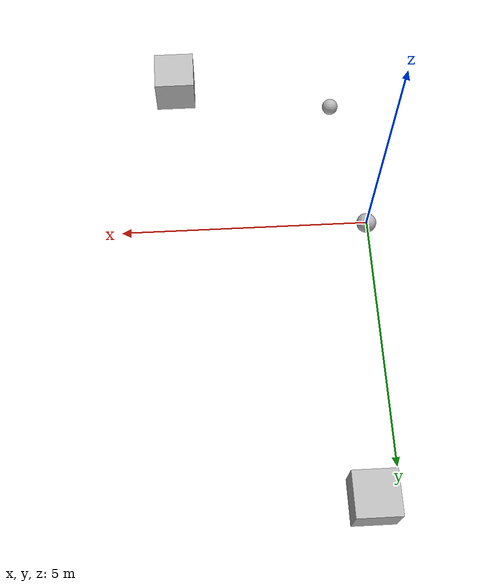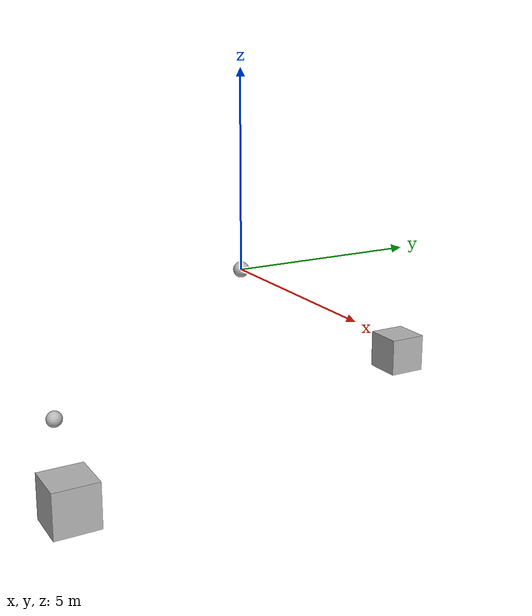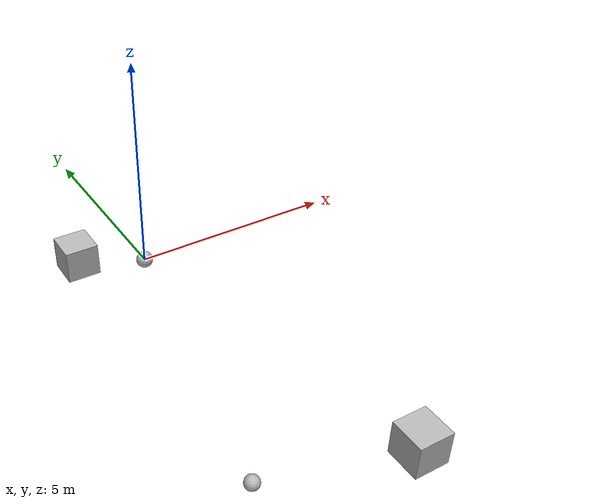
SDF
<?xml version="1.0" ?>
<!--
  Ignition Gazebo buoyancy plugin demo. This world demonstrates a graded
  buoyancy world consisting of some basic shapes which should eventually float
  up.
-->
<sdf version="1.6">
  <world name="buoyancy">

    <physics name="1ms" type="ode">
      <max_step_size>0.001</max_step_size>
      <real_time_factor>0</real_time_factor>
    </physics>
    <plugin
      filename="ignition-gazebo-physics-system"
      name="ignition::gazebo::systems::Physics">
    </plugin>
    <plugin
      filename="ignition-gazebo-user-commands-system"
      name="ignition::gazebo::systems::UserCommands">
    </plugin>
    <plugin
      filename="ignition-gazebo-scene-broadcaster-system"
      name="ignition::gazebo::systems::SceneBroadcaster">
    </plugin>
    <plugin
      filename="ignition-gazebo-buoyancy-system"
      name="ignition::gazebo::systems::Buoyancy">
      <graded_buoyancy>
        <default_density>1000</default_density>
        <density_change>
          <above_depth>0</above_depth>
          <density>1</density>
        </density_change>
      </graded_buoyancy>

      <!-- enable by link name -->
      <enable>lighter_than_water::ball::body</enable>

      <!-- enable by top level model name -->
      <enable>balloon_lighter_than_air</enable>

      <!-- enable by nested model name -->
      <enable>neutral_buoyancy::box</enable>
    </plugin>

    <light type="directional" name="sun">
      <cast_shadows>true</cast_shadows>
      <pose>0 0 10 0 0 0</pose>
      <diffuse>1 1 1 1</diffuse>
      <specular>0.5 0.5 0.5 1</specular>
      <attenuation>
        <range>1000</range>
        <constant>0.9</constant>
        <linear>0.01</linear>
        <quadratic>0.001</quadratic>
      </attenuation>
      <direction>-0.5 0.1 -0.9</direction>
    </light>

    <model name='lighter_than_water'>
      <pose>0 0 0 0 0 0</pose>
      <!-- This sphere should bob up and down. -->
      <model name="ball">
        <link name='body'>
          <pose>0 0 0 0 0 0</pose>
          <inertial>
            <mass>25</mass>
            <inertia>
              <ixx>86.28907821859966</ixx>
              <ixy>0</ixy>
              <ixz>0</ixz>
              <iyy>86.28907821859966</iyy>
              <iyz>0</iyz>
              <izz>5.026548245743671</izz>
            </inertia>
          </inertial>

          <visual name='body_visual'>
            <geometry>
              <sphere>
                <radius>0.2</radius>
              </sphere>
            </geometry>
          </visual>
          <collision name='body_collision'>
            <geometry>
              <sphere>
                <radius>0.2</radius>
              </sphere>
            </geometry>
          </collision>
        </link>
      </model>
    </model>

    <!-- This balloon should shoot up -->
    <model name='balloon_lighter_than_air'>
      <pose>0 -5 -3 0 0 0</pose>
      <link name='body'>
        <pose>0 0 0 0 0 0</pose>
        <inertial>
          <mass>0.1</mass>
          <inertia>
            <ixx>86.28907821859966</ixx>
            <ixy>0</ixy>
            <ixz>0</ixz>
            <iyy>86.28907821859966</iyy>
            <iyz>0</iyz>
            <izz>5.026548245743671</izz>
          </inertia>
        </inertial>

        <visual name='body_visual'>
          <geometry>
            <sphere>
              <radius>0.2</radius>
            </sphere>
          </geometry>
        </visual>
        <collision name='body_collision'>
          <geometry>
            <sphere>
              <radius>0.2</radius>
            </sphere>
          </geometry>
        </collision>
      </link>
    </model>

    <!-- This box is neutrally buoyant and therefore should stay still -->
    <model name='neutral_buoyancy'>
      <pose>0 5 -3 0 0 0</pose>
      <model name='box'>
          <pose>0 0 0 0 0 0</pose>
        <link name='body'>
          <inertial>
            <mass>1000</mass>
            <pose>0 0 0.1 0 0 0</pose>
            <inertia>
              <ixx>86.28907821859966</ixx>
              <ixy>0</ixy>
              <ixz>0</ixz>
              <iyy>86.28907821859966</iyy>
              <iyz>0</iyz>
              <izz>5.026548245743671</izz>
            </inertia>
          </inertial>

          <visual name='body_visual'>
            <geometry>
              <box>
                <size>1 1 1</size>
              </box>
            </geometry>
          </visual>
          <collision name='body_collision'>
            <geometry>
               <box>
                <size>1 1 1</size>
              </box>
            </geometry>
          </collision>
        </link>
      </model>
    </model>

    <!-- Not affected by buoyancy -->
    <model name='box_no_buoyancy'>
      <pose>4 -6 -3 0 0 0</pose>
      <link name='body'>
        <inertial>
          <mass>1000</mass>
          <pose>0 0 0.1 0 0 0</pose>
          <inertia>
            <ixx>86.28907821859966</ixx>
            <ixy>0</ixy>
            <ixz>0</ixz>
            <iyy>86.28907821859966</iyy>
            <iyz>0</iyz>
            <izz>5.026548245743671</izz>
          </inertia>
        </inertial>

        <visual name='body_visual'>
          <geometry>
            <box>
              <size>1 1 1</size>
            </box>
          </geometry>
        </visual>
        <collision name='body_collision'>
          <geometry>
             <box>
              <size>1 1 1</size>
            </box>
          </geometry>
        </collision>
      </link>
    </model>
  </world>
</sdf>
